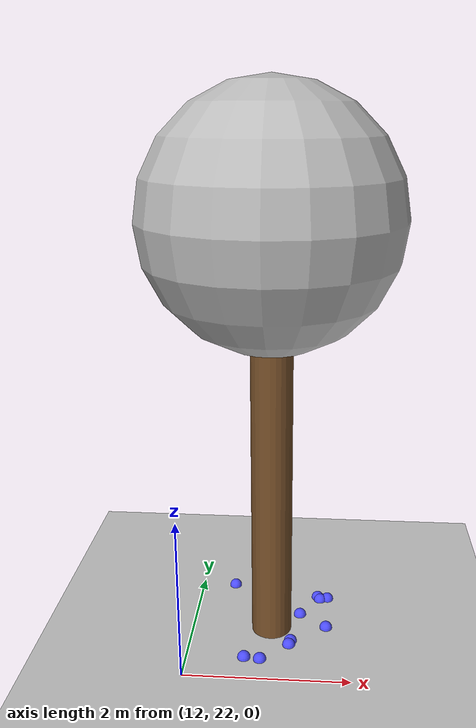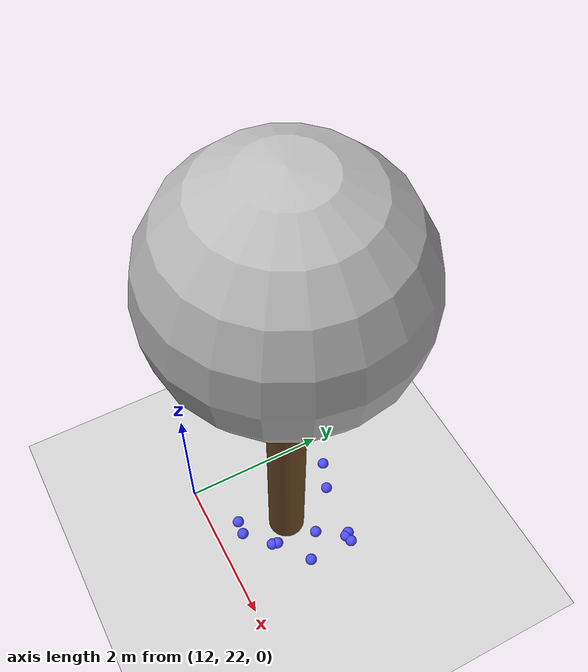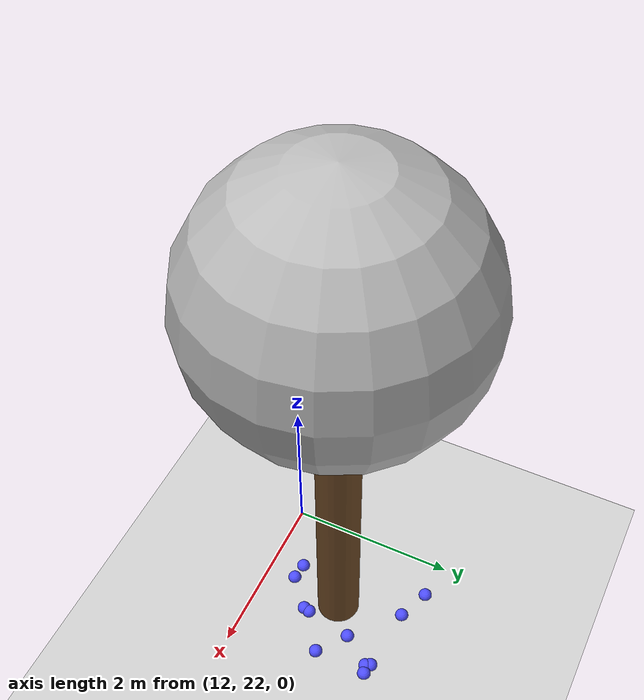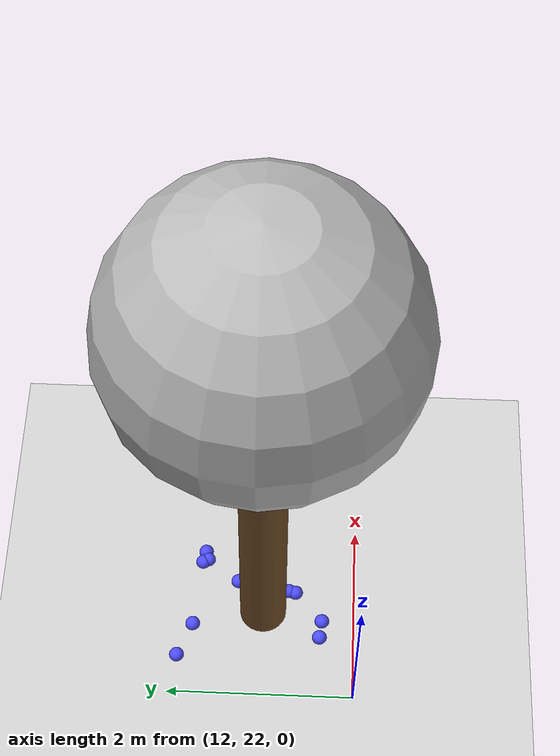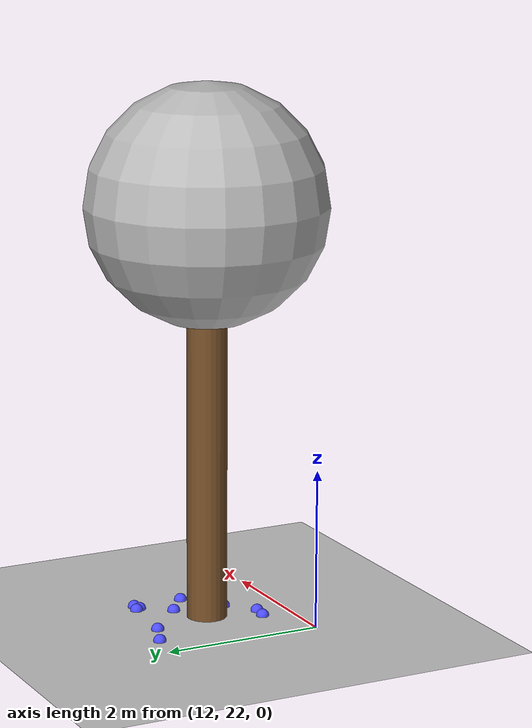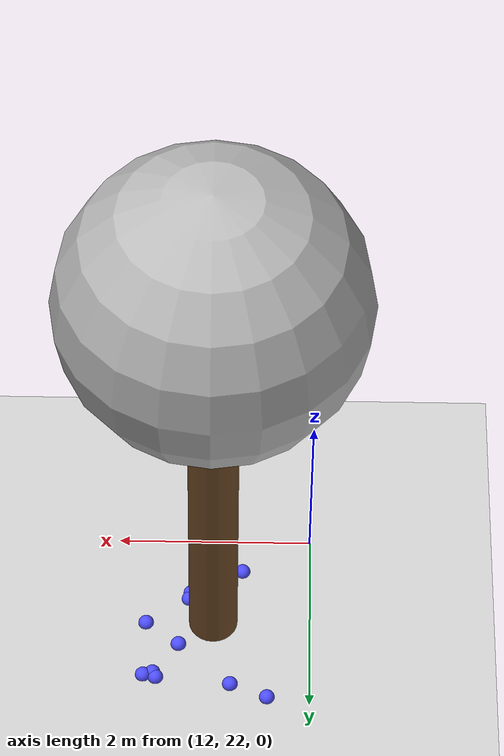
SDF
<sdf version="1.7">
 <world name="default">
  <model name="ground_plane">
   <static>1</static>
   <link name="link">
    <collision name="collision">
     <geometry><plane><normal>0 0 1</normal><size>100 100</size></plane></geometry>
     <surface>
      <contact><collide_bitmask>65535</collide_bitmask></contact>
      <friction><ode><mu>100</mu><mu2>50</mu2></ode></friction>
     </surface>
    </collision>
    <visual name="visual">
     <cast_shadows>0</cast_shadows>
     <geometry><plane><normal>0 0 1</normal><size>100 100</size></plane></geometry>
     <material>
      <script><uri>file://media/materials/scripts/gazebo.material</uri><name>Gazebo/Grey</name></script>
     </material>
    </visual>
   </link>
  </model>
  <model name="tree_simple_40">
   <static>1</static>
   <link name="link">
    <pose>0 0 0.1 0 -0 0</pose>
    <inertial>
     <mass>666</mass>
     <inertia>
      <ixx>0.0861167</ixx>
      <ixy>0</ixy>
      <ixz>0</ixz>
      <iyy>0.0861167</iyy>
      <iyz>0</iyz>
      <izz>0.0861167</izz>
     </inertia>
    </inertial>
    <collision name="collision_trunk">
     <pose>0 0 2 0 -0 0</pose>
     <geometry><cylinder><radius>0.25</radius><length>4</length></cylinder></geometry>
     <surface>
      <contact>
       <poissons_ratio>0.347</poissons_ratio>
       <elastic_modulus>8.8e+09</elastic_modulus>
       <ode><kp>100000</kp><kd>100</kd><max_vel>100</max_vel><min_depth>0.001</min_depth></ode>
      </contact>
      <friction>
       <torsional>
        <coefficient>1</coefficient>
        <use_patch_radius>0</use_patch_radius>
        <surface_radius>0.01</surface_radius>
       </torsional>
      </friction>
     </surface>
    </collision>
    <collision name="collision_treetop">
     <pose>0 0 5.2 0 -0 0</pose>
     <geometry><sphere><radius>1.5</radius></sphere></geometry>
     <surface>
      <contact>
       <poissons_ratio>0.347</poissons_ratio>
       <elastic_modulus>8.8e+09</elastic_modulus>
       <ode><kp>100000</kp><kd>100</kd><max_vel>100</max_vel><min_depth>0.001</min_depth></ode>
      </contact>
      <friction>
       <torsional>
        <coefficient>1</coefficient>
        <use_patch_radius>0</use_patch_radius>
        <surface_radius>0.01</surface_radius>
       </torsional>
      </friction>
     </surface>
    </collision>
    <visual name="trunk">
     <pose>0 0 2 0 -0 0</pose>
     <geometry><cylinder><radius>0.25</radius><length>4</length></cylinder></geometry>
     <material>
      <script>
       <uri>model://tree_simple/scripts</uri>
       <uri>model://tree_simple/materials/textures</uri>
       <name>TreeSimple/Trunk</name>
      </script>
     </material>
    </visual>
    <visual name="treetop">
     <pose>0 0 5.2 0 -0 0</pose>
     <geometry><sphere><radius>1.5</radius></sphere></geometry>
     <material>
      <script>
       <uri>model://tree_simple/scripts</uri>
       <uri>model://tree_simple/materials/textures</uri>
       <name>TreeSimple/Treetop</name>
      </script>
     </material>
    </visual>
   </link>
   <pose>13 23 -0.1 0 -0 0</pose>
  </model>
  <model name="seed_blue_65">
   <link name="link">
    <inertial>
     <mass>1</mass>
     <inertia><ixx>0.1</ixx><ixy>0</ixy><ixz>0</ixz><iyy>0.1</iyy><iyz>0</iyz><izz>0.1</izz></inertia>
    </inertial>
    <visual name="visual">
     <geometry><sphere><radius>0.08</radius></sphere></geometry>
     <material>
      <script><name>Gazebo/Grey</name><uri>file://media/materials/scripts/gazebo.material</uri></script>
      <shader type="pixel"><normal_map>__default__</normal_map></shader>
      <ambient>0.3 0.3 1 1</ambient>
      <diffuse>0.7 0.7 0.7 1</diffuse>
      <specular>0.01 0.01 0.01 1</specular>
      <emissive>0 0 0 1</emissive>
     </material>
    </visual>
    <collision name="collision">
     <geometry><sphere><radius>0.0005</radius></sphere></geometry>
     <surface>
      <friction>
       <ode><mu>1</mu><mu2>1</mu2><fdir1>0 0 0</fdir1><slip1>0</slip1><slip2>0</slip2></ode>
       <torsional>
        <coefficient>1</coefficient>
        <patch_radius>0</patch_radius>
        <surface_radius>0</surface_radius>
        <use_patch_radius>1</use_patch_radius>
        <ode><slip>0</slip></ode>
       </torsional>
      </friction>
      <bounce><restitution_coefficient>0</restitution_coefficient><threshold>1e+06</threshold></bounce>
      <contact>
       <collide_without_contact>0</collide_without_contact>
       <collide_without_contact_bitmask>1</collide_without_contact_bitmask>
       <collide_bitmask>1</collide_bitmask>
       <ode>
        <soft_cfm>0</soft_cfm>
        <soft_erp>0.2</soft_erp>
        <kp>1e+13</kp>
        <kd>1</kd>
        <max_vel>0.01</max_vel>
        <min_depth>0</min_depth>
       </ode>
       <bullet>
        <split_impulse>1</split_impulse>
        <split_impulse_penetration_threshold>-0.01</split_impulse_penetration_threshold>
        <soft_cfm>0</soft_cfm>
        <soft_erp>0.2</soft_erp>
        <kp>1e+13</kp>
        <kd>1</kd>
       </bullet>
      </contact>
     </surface>
    </collision>
   </link>
   <static>0</static>
   <pose>13.612 23.6387 0.0005 0 -0 0</pose>
  </model>
  <model name="seed_blue_67">
   <link name="link">
    <inertial>
     <mass>1</mass>
     <inertia><ixx>0.1</ixx><ixy>0</ixy><ixz>0</ixz><iyy>0.1</iyy><iyz>0</iyz><izz>0.1</izz></inertia>
    </inertial>
    <visual name="visual">
     <geometry><sphere><radius>0.08</radius></sphere></geometry>
     <material>
      <script><name>Gazebo/Grey</name><uri>file://media/materials/scripts/gazebo.material</uri></script>
      <shader type="pixel"><normal_map>__default__</normal_map></shader>
      <ambient>0.3 0.3 1 1</ambient>
      <diffuse>0.7 0.7 0.7 1</diffuse>
      <specular>0.01 0.01 0.01 1</specular>
      <emissive>0 0 0 1</emissive>
     </material>
    </visual>
    <collision name="collision">
     <geometry><sphere><radius>0.0005</radius></sphere></geometry>
     <surface>
      <friction>
       <ode><mu>1</mu><mu2>1</mu2><fdir1>0 0 0</fdir1><slip1>0</slip1><slip2>0</slip2></ode>
       <torsional>
        <coefficient>1</coefficient>
        <patch_radius>0</patch_radius>
        <surface_radius>0</surface_radius>
        <use_patch_radius>1</use_patch_radius>
        <ode><slip>0</slip></ode>
       </torsional>
      </friction>
      <bounce><restitution_coefficient>0</restitution_coefficient><threshold>1e+06</threshold></bounce>
      <contact>
       <collide_without_contact>0</collide_without_contact>
       <collide_without_contact_bitmask>1</collide_without_contact_bitmask>
       <collide_bitmask>1</collide_bitmask>
       <ode>
        <soft_cfm>0</soft_cfm>
        <soft_erp>0.2</soft_erp>
        <kp>1e+13</kp>
        <kd>1</kd>
        <max_vel>0.01</max_vel>
        <min_depth>0</min_depth>
       </ode>
       <bullet>
        <split_impulse>1</split_impulse>
        <split_impulse_penetration_threshold>-0.01</split_impulse_penetration_threshold>
        <soft_cfm>0</soft_cfm>
        <soft_erp>0.2</soft_erp>
        <kp>1e+13</kp>
        <kd>1</kd>
       </bullet>
      </contact>
     </surface>
    </collision>
   </link>
   <static>0</static>
   <pose>13.7107 23.667 0.0005 0 -0 0</pose>
  </model>
  <model name="seed_blue_70">
   <link name="link">
    <inertial>
     <mass>1</mass>
     <inertia><ixx>0.1</ixx><ixy>0</ixy><ixz>0</ixz><iyy>0.1</iyy><iyz>0</iyz><izz>0.1</izz></inertia>
    </inertial>
    <visual name="visual">
     <geometry><sphere><radius>0.08</radius></sphere></geometry>
     <material>
      <script><name>Gazebo/Grey</name><uri>file://media/materials/scripts/gazebo.material</uri></script>
      <shader type="pixel"><normal_map>__default__</normal_map></shader>
      <ambient>0.3 0.3 1 1</ambient>
      <diffuse>0.7 0.7 0.7 1</diffuse>
      <specular>0.01 0.01 0.01 1</specular>
      <emissive>0 0 0 1</emissive>
     </material>
    </visual>
    <collision name="collision">
     <geometry><sphere><radius>0.0005</radius></sphere></geometry>
     <surface>
      <friction>
       <ode><mu>1</mu><mu2>1</mu2><fdir1>0 0 0</fdir1><slip1>0</slip1><slip2>0</slip2></ode>
       <torsional>
        <coefficient>1</coefficient>
        <patch_radius>0</patch_radius>
        <surface_radius>0</surface_radius>
        <use_patch_radius>1</use_patch_radius>
        <ode><slip>0</slip></ode>
       </torsional>
      </friction>
      <bounce><restitution_coefficient>0</restitution_coefficient><threshold>1e+06</threshold></bounce>
      <contact>
       <collide_without_contact>0</collide_without_contact>
       <collide_without_contact_bitmask>1</collide_without_contact_bitmask>
       <collide_bitmask>1</collide_bitmask>
       <ode>
        <soft_cfm>0</soft_cfm>
        <soft_erp>0.2</soft_erp>
        <kp>1e+13</kp>
        <kd>1</kd>
        <max_vel>0.01</max_vel>
        <min_depth>0</min_depth>
       </ode>
       <bullet>
        <split_impulse>1</split_impulse>
        <split_impulse_penetration_threshold>-0.01</split_impulse_penetration_threshold>
        <soft_cfm>0</soft_cfm>
        <soft_erp>0.2</soft_erp>
        <kp>1e+13</kp>
        <kd>1</kd>
       </bullet>
      </contact>
     </surface>
    </collision>
   </link>
   <static>0</static>
   <pose>13.5807 23.6944 0.0005 0 -0 0</pose>
  </model>
  <model name="seed_blue_71">
   <link name="link">
    <inertial>
     <mass>1</mass>
     <inertia><ixx>0.1</ixx><ixy>0</ixy><ixz>0</ixz><iyy>0.1</iyy><iyz>0</iyz><izz>0.1</izz></inertia>
    </inertial>
    <visual name="visual">
     <geometry><sphere><radius>0.08</radius></sphere></geometry>
     <material>
      <script><name>Gazebo/Grey</name><uri>file://media/materials/scripts/gazebo.material</uri></script>
      <shader type="pixel"><normal_map>__default__</normal_map></shader>
      <ambient>0.3 0.3 1 1</ambient>
      <diffuse>0.7 0.7 0.7 1</diffuse>
      <specular>0.01 0.01 0.01 1</specular>
      <emissive>0 0 0 1</emissive>
     </material>
    </visual>
    <collision name="collision">
     <geometry><sphere><radius>0.0005</radius></sphere></geometry>
     <surface>
      <friction>
       <ode><mu>1</mu><mu2>1</mu2><fdir1>0 0 0</fdir1><slip1>0</slip1><slip2>0</slip2></ode>
       <torsional>
        <coefficient>1</coefficient>
        <patch_radius>0</patch_radius>
        <surface_radius>0</surface_radius>
        <use_patch_radius>1</use_patch_radius>
        <ode><slip>0</slip></ode>
       </torsional>
      </friction>
      <bounce><restitution_coefficient>0</restitution_coefficient><threshold>1e+06</threshold></bounce>
      <contact>
       <collide_without_contact>0</collide_without_contact>
       <collide_without_contact_bitmask>1</collide_without_contact_bitmask>
       <collide_bitmask>1</collide_bitmask>
       <ode>
        <soft_cfm>0</soft_cfm>
        <soft_erp>0.2</soft_erp>
        <kp>1e+13</kp>
        <kd>1</kd>
        <max_vel>0.01</max_vel>
        <min_depth>0</min_depth>
       </ode>
       <bullet>
        <split_impulse>1</split_impulse>
        <split_impulse_penetration_threshold>-0.01</split_impulse_penetration_threshold>
        <soft_cfm>0</soft_cfm>
        <soft_erp>0.2</soft_erp>
        <kp>1e+13</kp>
        <kd>1</kd>
       </bullet>
      </contact>
     </surface>
    </collision>
   </link>
   <static>0</static>
   <pose>12.8153 23.7656 0.0005 0 -0 0</pose>
  </model>
  <model name="seed_blue_72">
   <link name="link">
    <inertial>
     <mass>1</mass>
     <inertia><ixx>0.1</ixx><ixy>0</ixy><ixz>0</ixz><iyy>0.1</iyy><iyz>0</iyz><izz>0.1</izz></inertia>
    </inertial>
    <visual name="visual">
     <geometry><sphere><radius>0.08</radius></sphere></geometry>
     <material>
      <script><name>Gazebo/Grey</name><uri>file://media/materials/scripts/gazebo.material</uri></script>
      <shader type="pixel"><normal_map>__default__</normal_map></shader>
      <ambient>0.3 0.3 1 1</ambient>
      <diffuse>0.7 0.7 0.7 1</diffuse>
      <specular>0.01 0.01 0.01 1</specular>
      <emissive>0 0 0 1</emissive>
     </material>
    </visual>
    <collision name="collision">
     <geometry><sphere><radius>0.0005</radius></sphere></geometry>
     <surface>
      <friction>
       <ode><mu>1</mu><mu2>1</mu2><fdir1>0 0 0</fdir1><slip1>0</slip1><slip2>0</slip2></ode>
       <torsional>
        <coefficient>1</coefficient>
        <patch_radius>0</patch_radius>
        <surface_radius>0</surface_radius>
        <use_patch_radius>1</use_patch_radius>
        <ode><slip>0</slip></ode>
       </torsional>
      </friction>
      <bounce><restitution_coefficient>0</restitution_coefficient><threshold>1e+06</threshold></bounce>
      <contact>
       <collide_without_contact>0</collide_without_contact>
       <collide_without_contact_bitmask>1</collide_without_contact_bitmask>
       <collide_bitmask>1</collide_bitmask>
       <ode>
        <soft_cfm>0</soft_cfm>
        <soft_erp>0.2</soft_erp>
        <kp>1e+13</kp>
        <kd>1</kd>
        <max_vel>0.01</max_vel>
        <min_depth>0</min_depth>
       </ode>
       <bullet>
        <split_impulse>1</split_impulse>
        <split_impulse_penetration_threshold>-0.01</split_impulse_penetration_threshold>
        <soft_cfm>0</soft_cfm>
        <soft_erp>0.2</soft_erp>
        <kp>1e+13</kp>
        <kd>1</kd>
       </bullet>
      </contact>
     </surface>
    </collision>
   </link>
   <static>0</static>
   <pose>13.254 22.7241 0.0005 0 -0 0</pose>
  </model>
  <model name="seed_blue_73">
   <link name="link">
    <inertial>
     <mass>1</mass>
     <inertia><ixx>0.1</ixx><ixy>0</ixy><ixz>0</ixz><iyy>0.1</iyy><iyz>0</iyz><izz>0.1</izz></inertia>
    </inertial>
    <visual name="visual">
     <geometry><sphere><radius>0.08</radius></sphere></geometry>
     <material>
      <script><name>Gazebo/Grey</name><uri>file://media/materials/scripts/gazebo.material</uri></script>
      <shader type="pixel"><normal_map>__default__</normal_map></shader>
      <ambient>0.3 0.3 1 1</ambient>
      <diffuse>0.7 0.7 0.7 1</diffuse>
      <specular>0.01 0.01 0.01 1</specular>
      <emissive>0 0 0 1</emissive>
     </material>
    </visual>
    <collision name="collision">
     <geometry><sphere><radius>0.0005</radius></sphere></geometry>
     <surface>
      <friction>
       <ode><mu>1</mu><mu2>1</mu2><fdir1>0 0 0</fdir1><slip1>0</slip1><slip2>0</slip2></ode>
       <torsional>
        <coefficient>1</coefficient>
        <patch_radius>0</patch_radius>
        <surface_radius>0</surface_radius>
        <use_patch_radius>1</use_patch_radius>
        <ode><slip>0</slip></ode>
       </torsional>
      </friction>
      <bounce><restitution_coefficient>0</restitution_coefficient><threshold>1e+06</threshold></bounce>
      <contact>
       <collide_without_contact>0</collide_without_contact>
       <collide_without_contact_bitmask>1</collide_without_contact_bitmask>
       <collide_bitmask>1</collide_bitmask>
       <ode>
        <soft_cfm>0</soft_cfm>
        <soft_erp>0.2</soft_erp>
        <kp>1e+13</kp>
        <kd>1</kd>
        <max_vel>0.01</max_vel>
        <min_depth>0</min_depth>
       </ode>
       <bullet>
        <split_impulse>1</split_impulse>
        <split_impulse_penetration_threshold>-0.01</split_impulse_penetration_threshold>
        <soft_cfm>0</soft_cfm>
        <soft_erp>0.2</soft_erp>
        <kp>1e+13</kp>
        <kd>1</kd>
       </bullet>
      </contact>
     </surface>
    </collision>
   </link>
   <static>0</static>
   <pose>13.2365 22.6492 0.0005 0 -0 0</pose>
  </model>
  <model name="seed_blue_74">
   <link name="link">
    <inertial>
     <mass>1</mass>
     <inertia><ixx>0.1</ixx><ixy>0</ixy><ixz>0</ixz><iyy>0.1</iyy><iyz>0</iyz><izz>0.1</izz></inertia>
    </inertial>
    <visual name="visual">
     <geometry><sphere><radius>0.08</radius></sphere></geometry>
     <material>
      <script><name>Gazebo/Grey</name><uri>file://media/materials/scripts/gazebo.material</uri></script>
      <shader type="pixel"><normal_map>__default__</normal_map></shader>
      <ambient>0.3 0.3 1 1</ambient>
      <diffuse>0.7 0.7 0.7 1</diffuse>
      <specular>0.01 0.01 0.01 1</specular>
      <emissive>0 0 0 1</emissive>
     </material>
    </visual>
    <collision name="collision">
     <geometry><sphere><radius>0.0005</radius></sphere></geometry>
     <surface>
      <friction>
       <ode><mu>1</mu><mu2>1</mu2><fdir1>0 0 0</fdir1><slip1>0</slip1><slip2>0</slip2></ode>
       <torsional>
        <coefficient>1</coefficient>
        <patch_radius>0</patch_radius>
        <surface_radius>0</surface_radius>
        <use_patch_radius>1</use_patch_radius>
        <ode><slip>0</slip></ode>
       </torsional>
      </friction>
      <bounce><restitution_coefficient>0</restitution_coefficient><threshold>1e+06</threshold></bounce>
      <contact>
       <collide_without_contact>0</collide_without_contact>
       <collide_without_contact_bitmask>1</collide_without_contact_bitmask>
       <collide_bitmask>1</collide_bitmask>
       <ode>
        <soft_cfm>0</soft_cfm>
        <soft_erp>0.2</soft_erp>
        <kp>1e+13</kp>
        <kd>1</kd>
        <max_vel>0.01</max_vel>
        <min_depth>0</min_depth>
       </ode>
       <bullet>
        <split_impulse>1</split_impulse>
        <split_impulse_penetration_threshold>-0.01</split_impulse_penetration_threshold>
        <soft_cfm>0</soft_cfm>
        <soft_erp>0.2</soft_erp>
        <kp>1e+13</kp>
        <kd>1</kd>
       </bullet>
      </contact>
     </surface>
    </collision>
   </link>
   <static>0</static>
   <pose>13.6956 23.0294 0.0005 0 -0 0</pose>
  </model>
  <model name="seed_blue_75">
   <link name="link">
    <inertial>
     <mass>1</mass>
     <inertia><ixx>0.1</ixx><ixy>0</ixy><ixz>0</ixz><iyy>0.1</iyy><iyz>0</iyz><izz>0.1</izz></inertia>
    </inertial>
    <visual name="visual">
     <geometry><sphere><radius>0.08</radius></sphere></geometry>
     <material>
      <script><name>Gazebo/Grey</name><uri>file://media/materials/scripts/gazebo.material</uri></script>
      <shader type="pixel"><normal_map>__default__</normal_map></shader>
      <ambient>0.3 0.3 1 1</ambient>
      <diffuse>0.7 0.7 0.7 1</diffuse>
      <specular>0.01 0.01 0.01 1</specular>
      <emissive>0 0 0 1</emissive>
     </material>
    </visual>
    <collision name="collision">
     <geometry><sphere><radius>0.0005</radius></sphere></geometry>
     <surface>
      <friction>
       <ode><mu>1</mu><mu2>1</mu2><fdir1>0 0 0</fdir1><slip1>0</slip1><slip2>0</slip2></ode>
       <torsional>
        <coefficient>1</coefficient>
        <patch_radius>0</patch_radius>
        <surface_radius>0</surface_radius>
        <use_patch_radius>1</use_patch_radius>
        <ode><slip>0</slip></ode>
       </torsional>
      </friction>
      <bounce><restitution_coefficient>0</restitution_coefficient><threshold>1e+06</threshold></bounce>
      <contact>
       <collide_without_contact>0</collide_without_contact>
       <collide_without_contact_bitmask>1</collide_without_contact_bitmask>
       <collide_bitmask>1</collide_bitmask>
       <ode>
        <soft_cfm>0</soft_cfm>
        <soft_erp>0.2</soft_erp>
        <kp>1e+13</kp>
        <kd>1</kd>
        <max_vel>0.01</max_vel>
        <min_depth>0</min_depth>
       </ode>
       <bullet>
        <split_impulse>1</split_impulse>
        <split_impulse_penetration_threshold>-0.01</split_impulse_penetration_threshold>
        <soft_cfm>0</soft_cfm>
        <soft_erp>0.2</soft_erp>
        <kp>1e+13</kp>
        <kd>1</kd>
       </bullet>
      </contact>
     </surface>
    </collision>
   </link>
   <static>0</static>
   <pose>13.3545 23.2873 0.0005 0 -0 0</pose>
  </model>
  <model name="seed_blue_77">
   <link name="link">
    <inertial>
     <mass>1</mass>
     <inertia><ixx>0.1</ixx><ixy>0</ixy><ixz>0</ixz><iyy>0.1</iyy><iyz>0</iyz><izz>0.1</izz></inertia>
    </inertial>
    <visual name="visual">
     <geometry><sphere><radius>0.08</radius></sphere></geometry>
     <material>
      <script><name>Gazebo/Grey</name><uri>file://media/materials/scripts/gazebo.material</uri></script>
      <shader type="pixel"><normal_map>__default__</normal_map></shader>
      <ambient>0.3 0.3 1 1</ambient>
      <diffuse>0.7 0.7 0.7 1</diffuse>
      <specular>0.01 0.01 0.01 1</specular>
      <emissive>0 0 0 1</emissive>
     </material>
    </visual>
    <collision name="collision">
     <geometry><sphere><radius>0.0005</radius></sphere></geometry>
     <surface>
      <friction>
       <ode><mu>1</mu><mu2>1</mu2><fdir1>0 0 0</fdir1><slip1>0</slip1><slip2>0</slip2></ode>
       <torsional>
        <coefficient>1</coefficient>
        <patch_radius>0</patch_radius>
        <surface_radius>0</surface_radius>
        <use_patch_radius>1</use_patch_radius>
        <ode><slip>0</slip></ode>
       </torsional>
      </friction>
      <bounce><restitution_coefficient>0</restitution_coefficient><threshold>1e+06</threshold></bounce>
      <contact>
       <collide_without_contact>0</collide_without_contact>
       <collide_without_contact_bitmask>1</collide_without_contact_bitmask>
       <collide_bitmask>1</collide_bitmask>
       <ode>
        <soft_cfm>0</soft_cfm>
        <soft_erp>0.2</soft_erp>
        <kp>1e+13</kp>
        <kd>1</kd>
        <max_vel>0.01</max_vel>
        <min_depth>0</min_depth>
       </ode>
       <bullet>
        <split_impulse>1</split_impulse>
        <split_impulse_penetration_threshold>-0.01</split_impulse_penetration_threshold>
        <soft_cfm>0</soft_cfm>
        <soft_erp>0.2</soft_erp>
        <kp>1e+13</kp>
        <kd>1</kd>
       </bullet>
      </contact>
     </surface>
    </collision>
   </link>
   <static>0</static>
   <pose>12.436 23.9179 0.0005 0 -0 0</pose>
  </model>
  <model name="seed_blue_78">
   <link name="link">
    <inertial>
     <mass>1</mass>
     <inertia><ixx>0.1</ixx><ixy>0</ixy><ixz>0</ixz><iyy>0.1</iyy><iyz>0</iyz><izz>0.1</izz></inertia>
    </inertial>
    <visual name="visual">
     <geometry><sphere><radius>0.08</radius></sphere></geometry>
     <material>
      <script><name>Gazebo/Grey</name><uri>file://media/materials/scripts/gazebo.material</uri></script>
      <shader type="pixel"><normal_map>__default__</normal_map></shader>
      <ambient>0.3 0.3 1 1</ambient>
      <diffuse>0.7 0.7 0.7 1</diffuse>
      <specular>0.01 0.01 0.01 1</specular>
      <emissive>0 0 0 1</emissive>
     </material>
    </visual>
    <collision name="collision">
     <geometry><sphere><radius>0.0005</radius></sphere></geometry>
     <surface>
      <friction>
       <ode><mu>1</mu><mu2>1</mu2><fdir1>0 0 0</fdir1><slip1>0</slip1><slip2>0</slip2></ode>
       <torsional>
        <coefficient>1</coefficient>
        <patch_radius>0</patch_radius>
        <surface_radius>0</surface_radius>
        <use_patch_radius>1</use_patch_radius>
        <ode><slip>0</slip></ode>
       </torsional>
      </friction>
      <bounce><restitution_coefficient>0</restitution_coefficient><threshold>1e+06</threshold></bounce>
      <contact>
       <collide_without_contact>0</collide_without_contact>
       <collide_without_contact_bitmask>1</collide_without_contact_bitmask>
       <collide_bitmask>1</collide_bitmask>
       <ode>
        <soft_cfm>0</soft_cfm>
        <soft_erp>0.2</soft_erp>
        <kp>1e+13</kp>
        <kd>1</kd>
        <max_vel>0.01</max_vel>
        <min_depth>0</min_depth>
       </ode>
       <bullet>
        <split_impulse>1</split_impulse>
        <split_impulse_penetration_threshold>-0.01</split_impulse_penetration_threshold>
        <soft_cfm>0</soft_cfm>
        <soft_erp>0.2</soft_erp>
        <kp>1e+13</kp>
        <kd>1</kd>
       </bullet>
      </contact>
     </surface>
    </collision>
   </link>
   <static>0</static>
   <pose>12.7031 22.3725 0.0005 0 -0 0</pose>
  </model>
  <model name="seed_blue_79">
   <link name="link">
    <inertial>
     <mass>1</mass>
     <inertia><ixx>0.1</ixx><ixy>0</ixy><ixz>0</ixz><iyy>0.1</iyy><iyz>0</iyz><izz>0.1</izz></inertia>
    </inertial>
    <visual name="visual">
     <geometry><sphere><radius>0.08</radius></sphere></geometry>
     <material>
      <script><name>Gazebo/Grey</name><uri>file://media/materials/scripts/gazebo.material</uri></script>
      <shader type="pixel"><normal_map>__default__</normal_map></shader>
      <ambient>0.3 0.3 1 1</ambient>
      <diffuse>0.7 0.7 0.7 1</diffuse>
      <specular>0.01 0.01 0.01 1</specular>
      <emissive>0 0 0 1</emissive>
     </material>
    </visual>
    <collision name="collision">
     <geometry><sphere><radius>0.0005</radius></sphere></geometry>
     <surface>
      <friction>
       <ode><mu>1</mu><mu2>1</mu2><fdir1>0 0 0</fdir1><slip1>0</slip1><slip2>0</slip2></ode>
       <torsional>
        <coefficient>1</coefficient>
        <patch_radius>0</patch_radius>
        <surface_radius>0</surface_radius>
        <use_patch_radius>1</use_patch_radius>
        <ode><slip>0</slip></ode>
       </torsional>
      </friction>
      <bounce><restitution_coefficient>0</restitution_coefficient><threshold>1e+06</threshold></bounce>
      <contact>
       <collide_without_contact>0</collide_without_contact>
       <collide_without_contact_bitmask>1</collide_without_contact_bitmask>
       <collide_bitmask>1</collide_bitmask>
       <ode>
        <soft_cfm>0</soft_cfm>
        <soft_erp>0.2</soft_erp>
        <kp>1e+13</kp>
        <kd>1</kd>
        <max_vel>0.01</max_vel>
        <min_depth>0</min_depth>
       </ode>
       <bullet>
        <split_impulse>1</split_impulse>
        <split_impulse_penetration_threshold>-0.01</split_impulse_penetration_threshold>
        <soft_cfm>0</soft_cfm>
        <soft_erp>0.2</soft_erp>
        <kp>1e+13</kp>
        <kd>1</kd>
       </bullet>
      </contact>
     </surface>
    </collision>
   </link>
   <static>0</static>
   <pose>12.8983 22.3499 0.0005 0 -0 0</pose>
  </model>
 </world>
</sdf>
